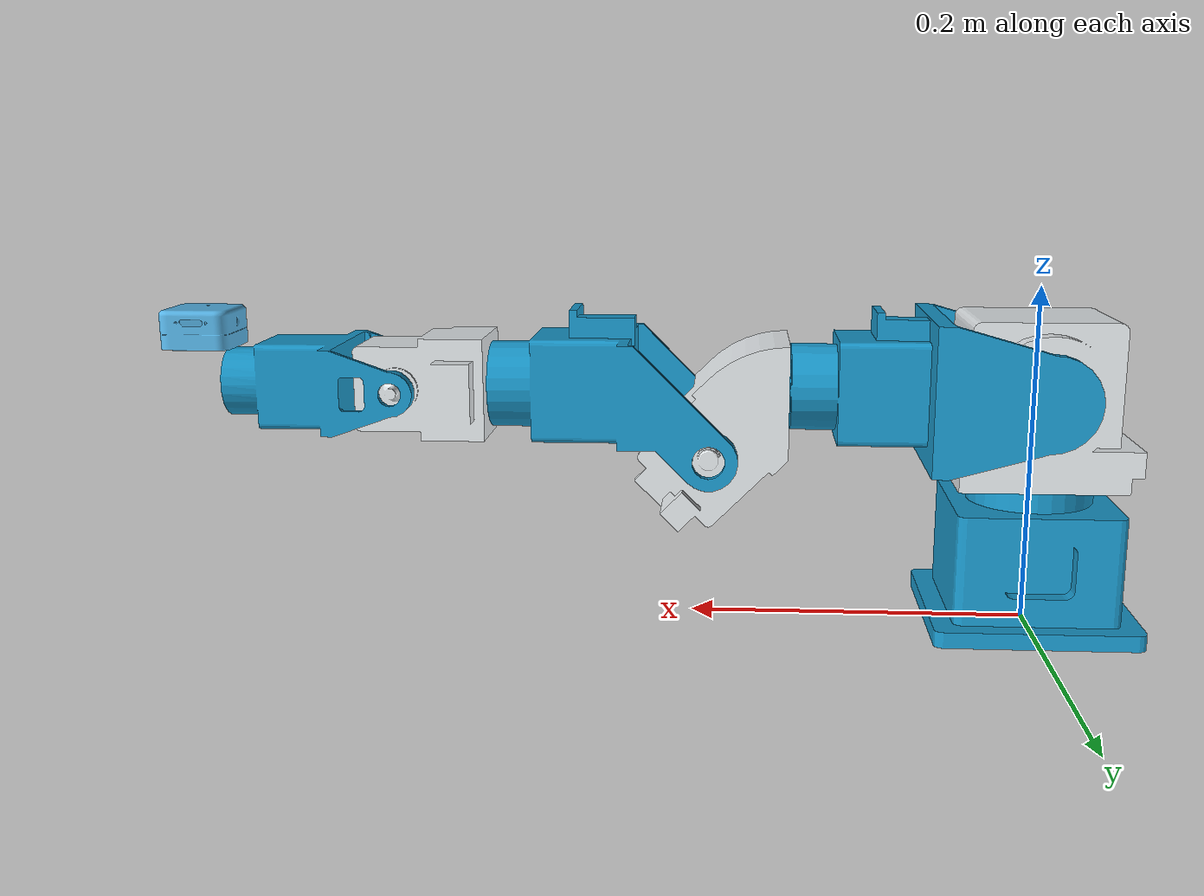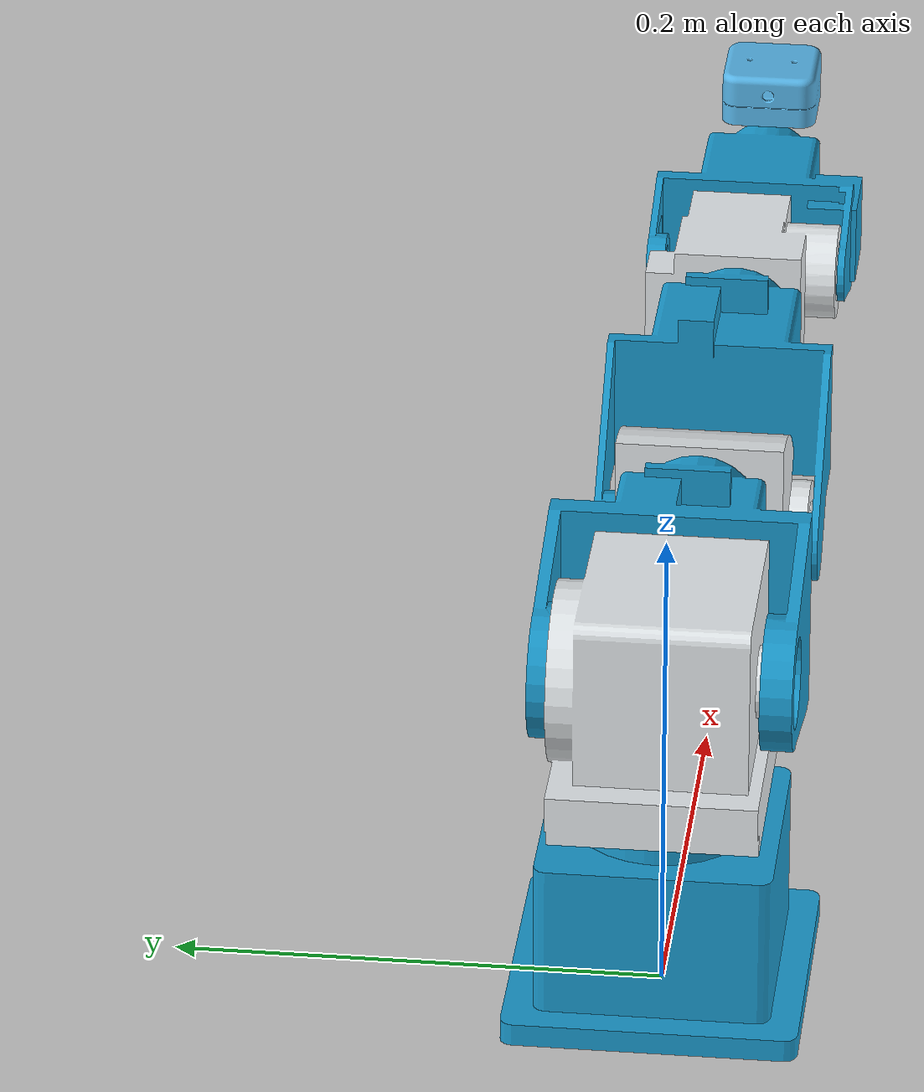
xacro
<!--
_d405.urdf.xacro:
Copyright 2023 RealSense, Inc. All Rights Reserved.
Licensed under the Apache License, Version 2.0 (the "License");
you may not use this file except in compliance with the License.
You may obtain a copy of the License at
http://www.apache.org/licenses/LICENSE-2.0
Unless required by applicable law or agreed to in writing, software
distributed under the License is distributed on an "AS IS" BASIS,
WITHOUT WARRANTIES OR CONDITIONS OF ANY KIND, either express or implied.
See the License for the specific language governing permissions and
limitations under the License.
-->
<?xml version="1.0"?>
<robot
  name="blue_arm" xmlns:xacro="http://www.ros.org/wiki/xacro">

  <xacro:arg name="use_nominal_extrinsics" default="true"/>
  <xacro:include filename="$(find realsense2_description)/urdf/_d405.urdf.xacro" />

  <xacro:sensor_d405 parent="link_7" use_nominal_extrinsics="$(arg use_nominal_extrinsics)">
    <origin xyz="0 0 0" rpy="0 0 0"/>
  </xacro:sensor_d405>

  <xacro:include filename="$(find blue_arm_description)/urdf/blue_arm.gazebo.xacro" />
  <xacro:include filename="$(find blue_arm_description)/urdf/blue_arm.transmission.xacro" />

  <link name="world"/>
  <joint name="joint_0 " type="fixed">
    <origin
      xyz="0 0 0"
      rpy="0 0 0" />
    <parent link="world"/>
    <child link="base_link"/>
  </joint>

  <link
    name="base_link">
    <inertial>
      <origin
        xyz="-1.2721E-09 -2.221E-09 0.029334"
        rpy="0 0 0" />
      <mass
        value="0.80823" />
      <inertia
        ixx="0.1"
        ixy="0"
        ixz="0"
        iyy="0.1"
        iyz="0"
        izz="0.1" />
    </inertial>
    <visual>
      <origin
        xyz="0 0 0"
        rpy="0 0 0" />
      <geometry>
        <mesh
          filename="package://blue_arm_description/meshes/visual/base_link.STL" />
      </geometry>
      <material
        name="">
        <color
          rgba="0.1 0.6 0.8 1" />
      </material>
    </visual>
    <collision>
      <origin
        xyz="0 0 0"
        rpy="0 0 0" />
      <geometry>
        <mesh
          filename="package://blue_arm_description/meshes/collision/base_link.STL" />
      </geometry>
    </collision>
  </link>
  <link
    name="link_1">
    <inertial>
      <origin
        xyz="0.0013724819847024 0.00105856120896306 -0.0137822751691176"
        rpy="0 0 0" />
      <mass
        value="0.842297822851205" />
      <inertia
        ixx="0.1"
        ixy="0"
        ixz="0"
        iyy="0.1"
        iyz="0"
        izz="0.1" />
    </inertial>
    <visual>
      <origin
        xyz="0 0 0"
        rpy="0 0 0" />
      <geometry>
        <mesh
          filename="package://blue_arm_description/meshes/visual/link_1.STL" />
      </geometry>
      <material
        name="">
        <color
          rgba="0.898039215686275 0.917647058823529 0.929411764705882 1" />
      </material>
    </visual>
    <collision>
      <origin
        xyz="0 0 0"
        rpy="0 0 0" />
      <geometry>
        <mesh
          filename="package://blue_arm_description/meshes/collision/link_1.STL" />
      </geometry>
    </collision>
  </link>
  <joint
    name="joint_1"
    type="revolute">
    <origin
      xyz="0 0 0.14"
      rpy="0 0 0" />
    <parent
      link="base_link" />
    <child
      link="link_1" />
    <axis
      xyz="0 0 1" />
    <limit
      lower="-3.1415926"
      upper="3.1415926"
      effort="1200"
      velocity="3.29" />
  </joint>
  <link
    name="link_2">
    <inertial>
      <origin
        xyz="0.0769223200130146 8.08732473817575E-05 -0.00042635625580266"
        rpy="0 0 0" />
      <mass
        value="0.745981126447571" />
      <inertia
        ixx="0.1"
        ixy="0"
        ixz="0"
        iyy="0.1"
        iyz="0"
        izz="0.1" />
    </inertial>
    <visual>
      <origin
        xyz="0 0 0"
        rpy="0 0 0" />
      <geometry>
        <mesh
          filename="package://blue_arm_description/meshes/visual/link_2.STL" />
      </geometry>
      <material
        name="">
        <color
          rgba="0.1 0.6 0.8 1" />
      </material>
    </visual>
    <collision>
      <origin
        xyz="0 0 0"
        rpy="0 0 0" />
      <geometry>
        <mesh
          filename="package://blue_arm_description/meshes/collision/link_2.STL" />
      </geometry>
    </collision>
  </link>
  <joint
    name="joint_2"
    type="revolute">
    <origin
      xyz="0 0 0"
      rpy="0 0 0" />
    <parent
      link="link_1" />
    <child
      link="link_2" />
    <axis
      xyz="0 1 0" />
    <limit
      lower="-3.1415926"
      upper="0"
      effort="1200"
      velocity="3.29" />
  </joint>
  <link
    name="link_3">
    <inertial>
      <origin
        xyz="-0.0114331813251084 -0.000457582008541844 -0.0216566472730735"
        rpy="0 0 0" />
      <mass
        value="0.804459827803754" />
      <inertia
        ixx="0.1"
        ixy="0"
        ixz="0"
        iyy="0.1"
        iyz="0"
        izz="0.1" />
    </inertial>
    <visual>
      <origin
        xyz="0 0 0"
        rpy="0 0 0" />
      <geometry>
        <mesh
          filename="package://blue_arm_description/meshes/visual/link_3.STL" />
      </geometry>
      <material
        name="">
        <color
          rgba="0.898039215686275 0.917647058823529 0.929411764705882 1" />
      </material>
    </visual>
    <collision>
      <origin
        xyz="0 0 0"
        rpy="0 0 0" />
      <geometry>
        <mesh
          filename="package://blue_arm_description/meshes/collision/link_3.STL" />
      </geometry>
    </collision>
  </link>
  <joint
    name="joint_3"
    type="revolute">
    <origin
      xyz="0.1415 0 0"
      rpy="0 0 0" />
    <parent
      link="link_2" />
    <child
      link="link_3" />
    <axis
      xyz="1 0 0" />
    <limit
      lower="-3.1415926"
      upper="3.1415926"
      effort="1000"
      velocity="2.39" />
  </joint>
  <link
    name="link_4">
    <inertial>
      <origin
        xyz="0.0769734778463645 0.000934629244450365 0.0356212264841299"
        rpy="0 0 0" />
      <mass
        value="0.566230423072006" />
      <inertia
        ixx="0.1"
        ixy="0"
        ixz="0"
        iyy="0.1"
        iyz="0"
        izz="0.1" />
    </inertial>
    <visual>
      <origin
        xyz="0 0 0"
        rpy="0 0 0" />
      <geometry>
        <mesh
          filename="package://blue_arm_description/meshes/visual/link_4.STL" />
      </geometry>
      <material
        name="">
        <color
          rgba="0.1 0.6 0.8 1" />
      </material>
    </visual>
    <collision>
      <origin
        xyz="0 0 0"
        rpy="0 0 0" />
      <geometry>
        <mesh
          filename="package://blue_arm_description/meshes/collision/link_4.STL" />
      </geometry>
    </collision>
  </link>
  <joint
    name="joint_4"
    type="revolute">
    <origin
      xyz="0.0485 0 -0.0365"
      rpy="0 0 0" />
    <parent
      link="link_3" />
    <child
      link="link_4" />
    <axis
      xyz="0 -1 0" />
    <limit
      lower="-3.1415926"
      upper="0"
      effort="1000"
      velocity="2.39" />
  </joint>
  <link
    name="link_5">
    <inertial>
      <origin
        xyz="-0.0148074583751761 0.00213542128687548 2.18169794868883E-07"
        rpy="0 0 0" />
      <mass
        value="0.462017126683371" />
      <inertia
        ixx="0.1"
        ixy="0"
        ixz="0"
        iyy="0.1"
        iyz="0"
        izz="0.1" />
    </inertial>
    <visual>
      <origin
        xyz="0 0 0"
        rpy="0 0 0" />
      <geometry>
        <mesh
          filename="package://blue_arm_description/meshes/visual/link_5.STL" />
      </geometry>
      <material
        name="">
        <color
          rgba="0.898039215686275 0.917647058823529 0.929411764705882 1" />
      </material>
    </visual>
    <collision>
      <origin
        xyz="0 0 0"
        rpy="0 0 0" />
      <geometry>
        <mesh
          filename="package://blue_arm_description/meshes/collision/link_5.STL" />
      </geometry>
    </collision>
  </link>
  <joint
    name="joint_5"
    type="revolute">
    <origin
      xyz="0.183 0 0.0365"
      rpy="0 0 0" />
    <parent
      link="link_4" />
    <child
      link="link_5" />
    <axis
      xyz="1 0 0" />
    <limit
      lower="-3.1415926"
      upper="3.1415926"
      effort="1000"
      velocity="2.39" />
  </joint>
  <link
    name="link_6">
    <inertial>
      <origin
        xyz="0.057311 -0.0040732 2.7725E-07"
        rpy="0 0 0" />
      <mass
        value="0.41677" />
      <inertia
        ixx="0.1"
        ixy="0"
        ixz="0"
        iyy="0.1"
        iyz="0"
        izz="0.1" />
    </inertial>
    <visual>
      <origin
        xyz="0 0 0"
        rpy="0 0 0" />
      <geometry>
        <mesh
          filename="package://blue_arm_description/meshes/visual/link_6.STL" />
      </geometry>
      <material
        name="">
        <color
          rgba="0.1 0.6 0.8 1" />
      </material>
    </visual>
    <collision>
      <origin
        xyz="0 0 0"
        rpy="0 0 0" />
      <geometry>
        <mesh
          filename="package://blue_arm_description/meshes/collision/link_6.STL" />
      </geometry>
    </collision>
  </link>
  <joint
    name="joint_6"
    type="revolute">
    <origin
      xyz="0 0 0"
      rpy="0 0 0" />
    <parent
      link="link_5" />
    <child
      link="link_6" />
    <axis
      xyz="0 -1 0" />
    <limit
      lower="-1.7"
      upper="1.7"
      effort="1000"
      velocity="2.77" />
  </joint>
  <link
    name="link_7">
    <inertial>
      <origin
        xyz="0 0 0"
        rpy="0 0 0" />
      <mass
        value="0.1" />
      <inertia
        ixx="0.1"
        ixy="0"
        ixz="0"
        iyy="0.1"
        iyz="0"
        izz="0.1" />
    </inertial>
    <collision>
      <geometry>
        <box size="0.01 0.01 0.01"/>
      </geometry>
      <origin rpy="0 0 0" xyz="0 0 0"/>
    </collision>
  </link>
  <joint
    name="joint_7"
    type="revolute">
    <origin
      xyz="0.107 0 0"
      rpy="0 0 0" />
    <parent
      link="link_6" />
    <child
      link="link_7" />
    <axis
      xyz="1 0 0" />
    <limit
      lower="-3.1415926"
      upper="3.1415926"
      effort="1000"
      velocity="2.77" />
  </joint>
</robot>

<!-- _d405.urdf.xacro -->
<!--
This is the URDF model for the RealSense 405 camera, in its
aluminum peripherial evaluation case.
-->

<robot name="sensor_d405" xmlns:xacro="http://ros.org/wiki/xacro">
  <!-- Includes -->
  <xacro:include filename="$(find realsense2_description)/urdf/_materials.urdf.xacro" />
  <xacro:include filename="$(find realsense2_description)/urdf/_usb_plug.urdf.xacro" />

  <xacro:macro name="sensor_d405" params="parent *origin name:=camera use_nominal_extrinsics:=false">
    <xacro:arg name="add_plug" default="false" />
    <xacro:property name="M_PI" value="3.1415926535897931" />

    <!-- The following values are approximate, and the camera node
     publishing TF values with actual calibrated camera extrinsic values -->
    <xacro:property name="d405_cam_depth_to_infra1_offset" value="0.0"/>
    <xacro:property name="d405_cam_depth_to_infra2_offset" value="-0.018"/>
    <xacro:property name="d405_cam_depth_to_color_offset" value="0.0"/>

    <!-- The following values model the aluminum peripherial case for the
  	d405 camera, with the camera joint represented by the actual
  	peripherial camera tripod mount -->
    <xacro:property name="d405_cam_width" value="0.042"/>
    <xacro:property name="d405_cam_height" value="0.042"/>
    <xacro:property name="d405_cam_depth" value="0.023"/>
    <xacro:property name="d405_cam_mount_from_center_offset" value="0.01465"/>
    <!-- glass cover is 0.1 mm inwards from front aluminium plate -->
    <xacro:property name="d405_glass_to_front" value="0.1e-3"/>
    <!-- see datasheet Revision 017, Table. 4-16 page 97 -->
    <xacro:property name="d405_zero_depth_to_glass" value="3.7e-3"/>
    <!-- convenience precomputation to avoid clutter-->
    <xacro:property name="d405_mesh_x_offset" value="${d405_cam_mount_from_center_offset-d405_glass_to_front-d405_zero_depth_to_glass}"/>

    <!-- The following offset is relative to the physical d405 camera peripherial
  	camera tripod mount -->
    <xacro:property name="d405_cam_depth_px" value="${d405_cam_mount_from_center_offset}"/>
    <xacro:property name="d405_cam_depth_py" value="0.009"/>
    <xacro:property name="d405_cam_depth_pz" value="${d405_cam_height/2}"/>

    <!-- camera body, with origin at bottom screw mount -->
    <joint name="${name}_joint" type="fixed">
      <xacro:insert_block name="origin" />
      <parent link="${parent}"/>
      <child link="${name}_bottom_screw_frame" />
    </joint>
    <link name="${name}_bottom_screw_frame"/>

    <joint name="${name}_link_joint" type="fixed">
      <origin xyz="${d405_mesh_x_offset} ${d405_cam_depth_py} ${d405_cam_depth_pz}" rpy="0 0 0"/>
      <parent link="${name}_bottom_screw_frame"/>
      <child link="${name}_link" />
    </joint>

    <link name="${name}_link">
      <visual>
        <!-- the mesh origin is at front plate in between the two infrared camera axes -->
        <origin xyz="${d405_zero_depth_to_glass + d405_glass_to_front} ${-d405_cam_depth_py} 0" rpy="${M_PI/2} 0 ${M_PI/2}"/>
        <geometry>
	        <mesh filename="file://$(find realsense2_description)/meshes/d405.stl" scale="0.001 0.001 0.001" />
        </geometry>
        <material name="aluminum"/>
      </visual>
      <collision>
        <origin xyz="${d405_zero_depth_to_glass-d405_cam_depth/2} ${-d405_cam_depth_py} 0" rpy="0 0 0"/>
        <geometry>
          <box size="${d405_cam_depth} ${d405_cam_width} ${d405_cam_height}"/>
        </geometry>
      </collision>
      <inertial>
        <!-- The following are not reliable values, and should not be used for modeling -->
        <mass value="0.072" />
        <origin xyz="0 0 0" />
        <inertia ixx="0.003881243" ixy="0.0" ixz="0.0" iyy="0.000498940" iyz="0.0" izz="0.003879257" />
      </inertial>
    </link>

    <!-- Use the nominal extrinsics between camera frames if the calibrated extrinsics aren't being published. e.g. running the device in simulation  -->
    <xacro:if value="${use_nominal_extrinsics}">
      <!-- camera depth joints and links -->
      <joint name="${name}_depth_joint" type="fixed">
        <origin xyz="0 0 0" rpy="0 0 0"/>
        <parent link="${name}_link"/>
        <child link="${name}_depth_frame" />
      </joint>
      <link name="${name}_depth_frame"/>

      <joint name="${name}_depth_optical_joint" type="fixed">
        <origin xyz="0 0 0" rpy="${-M_PI/2} 0 ${-M_PI/2}" />
        <parent link="${name}_depth_frame" />
        <child link="${name}_depth_optical_frame" />
      </joint>
      <link name="${name}_depth_optical_frame"/>

      <!-- camera left IR joints and links -->
      <joint name="${name}_infra1_joint" type="fixed">
        <origin xyz="0 ${d405_cam_depth_to_infra1_offset} 0" rpy="0 0 0" />
        <parent link="${name}_link" />
        <child link="${name}_infra1_frame" />
      </joint>
      <link name="${name}_infra1_frame"/>

      <joint name="${name}_infra1_optical_joint" type="fixed">
        <origin xyz="0 0 0" rpy="${-M_PI/2} 0 ${-M_PI/2}" />
        <parent link="${name}_infra1_frame" />
        <child link="${name}_infra1_optical_frame" />
      </joint>
      <link name="${name}_infra1_optical_frame"/>

      <!-- camera right IR joints and links -->
      <joint name="${name}_infra2_joint" type="fixed">
        <origin xyz="0 ${d405_cam_depth_to_infra2_offset} 0" rpy="0 0 0" />
        <parent link="${name}_link" />
        <child link="${name}_infra2_frame" />
      </joint>
      <link name="${name}_infra2_frame"/>

      <joint name="${name}_infra2_optical_joint" type="fixed">
        <origin xyz="0 0 0" rpy="${-M_PI/2} 0 ${-M_PI/2}" />
        <parent link="${name}_infra2_frame" />
        <child link="${name}_infra2_optical_frame" />
      </joint>
      <link name="${name}_infra2_optical_frame"/>

      <!-- camera color joints and links -->
      <joint name="${name}_color_joint" type="fixed">
        <origin xyz="0 ${d405_cam_depth_to_color_offset} 0" rpy="0 0 0" />
        <parent link="${name}_link" />
        <child link="${name}_color_frame" />
      </joint>
      <link name="${name}_color_frame"/>

      <joint name="${name}_color_optical_joint" type="fixed">
        <origin xyz="0 0 0" rpy="${-M_PI/2} 0 ${-M_PI/2}" />
        <parent link="${name}_color_frame" />
        <child link="${name}_color_optical_frame" />
      </joint>
      <link name="${name}_color_optical_frame"/>
    </xacro:if>

    <xacro:if value="$(arg add_plug)">
      <xacro:usb_plug parent="${name}_link" name="${name}_usb_plug">
        <origin xyz="${-0.00153-d405_mesh_x_offset} ${d405_cam_width/2-d405_cam_depth_py} 0" rpy="${M_PI} 0 0"/>
      </xacro:usb_plug>
    </xacro:if>
  </xacro:macro>
</robot>

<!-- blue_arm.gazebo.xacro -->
<robot name="blue_arm" xmlns:xacro="http://www.ros.org/wiki/xacro">
  <physics type='ode'>
    <max_step_size>0.001</max_step_size>
    <real_time_factor>0.1</real_time_factor>
    <real_time_update_rate>1000</real_time_update_rate>
    <gravity>0 0 -9.8</gravity>
  </physics>

  <gazebo>
    <plugin name="gazebo_ros_control" filename="libgazebo_ros_control.so">
      <robotNamespace></robotNamespace>
      <robotSimType>gazebo_ros_control/DefaultRobotHWSim</robotSimType>
      <legacyModeNS>true</legacyModeNS>
    </plugin>
  </gazebo>

  <gazebo reference="base_link">
    <mu1>0.2</mu1>
    <mu2>0.2</mu2>
    <material>Gazebo/Blue</material>
    <selfCollide>false</selfCollide>
  </gazebo>

  <gazebo reference="link_1">
    <mu1>0.2</mu1>
    <mu2>0.2</mu2>
    <material>Gazebo/Gray</material>
    <selfCollide>false</selfCollide>
  </gazebo>

  <gazebo reference="link_2">
    <mu1>0.2</mu1>
    <mu2>0.2</mu2>
    <material>Gazebo/Blue</material>
    <selfCollide>false</selfCollide>
  </gazebo>

  <gazebo reference="link_3">
    <mu1>0.2</mu1>
    <mu2>0.2</mu2>
    <material>Gazebo/Gray</material>
    <selfCollide>false</selfCollide>
  </gazebo>

  <gazebo reference="link_4">
    <mu1>0.2</mu1>
    <mu2>0.2</mu2>
    <material>Gazebo/Blue</material>
    <selfCollide>false</selfCollide>
  </gazebo>

  <gazebo reference="link_5">
    <mu1>0.2</mu1>
    <mu2>0.2</mu2>
    <material>Gazebo/Gray</material>
    <selfCollide>false</selfCollide>
  </gazebo>

  <gazebo reference="link_6">
    <mu1>0.2</mu1>
    <mu2>0.2</mu2>
    <material>Gazebo/Blue</material>
    <selfCollide>false</selfCollide>
  </gazebo>

  <gazebo reference="joint_1">
    <implicitSpringDamper>True</implicitSpringDamper>
  </gazebo>
  <gazebo reference="joint_2">
    <implicitSpringDamper>True</implicitSpringDamper>
  </gazebo>
  <gazebo reference="joint_3">
    <implicitSpringDamper>True</implicitSpringDamper>
  </gazebo>
  <gazebo reference="joint_4">
    <implicitSpringDamper>True</implicitSpringDamper>
  </gazebo>
  <gazebo reference="joint_5">
    <implicitSpringDamper>True</implicitSpringDamper>
  </gazebo>
  <gazebo reference="joint_6">
    <implicitSpringDamper>True</implicitSpringDamper>
  </gazebo>
  <gazebo reference="joint_7">
    <implicitSpringDamper>True</implicitSpringDamper>
  </gazebo>

</robot>
